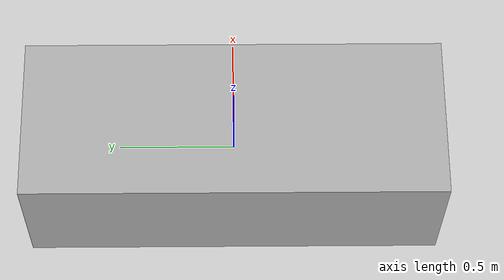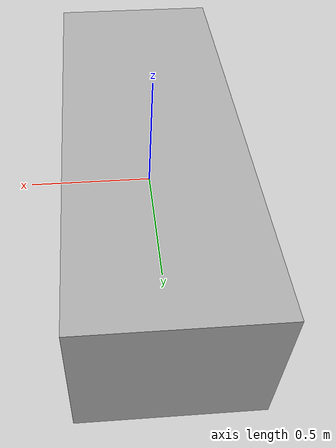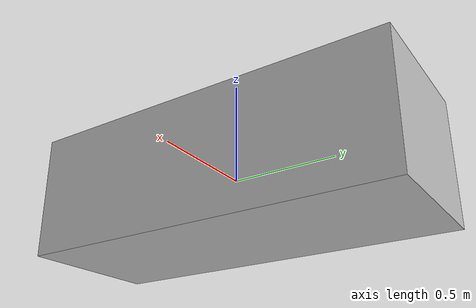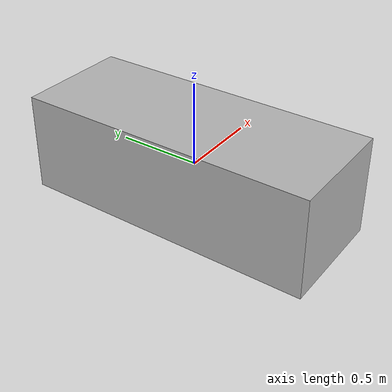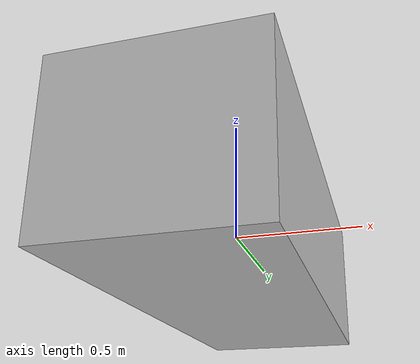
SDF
<?xml version='1.0'?>
<sdf version="1.4">
<model name="bed">
  <pose>0 0 0 0 0 0</pose>
    <link name="link">
      <inertial>
        <mass>0.1</mass>
        <inertia>
          <ixx>0.083</ixx>
          <ixy>0.0</ixy>
          <ixz>0.0</ixz>
          <iyy>0.083</iyy>
          <iyz>0.0</iyz>
          <izz>0.083</izz>
        </inertia>
      </inertial>
      <collision name="collision">
        <geometry>
          <box>
            <size>0.7 1.8 0.6</size>
          </box>
        </geometry>
      </collision>
      <visual name="visual">
        <geometry>
          <box>
            <size>0.7 1.8 0.6</size>
          </box>
        </geometry>
      </visual>
    </link>
  </model>
</sdf>
